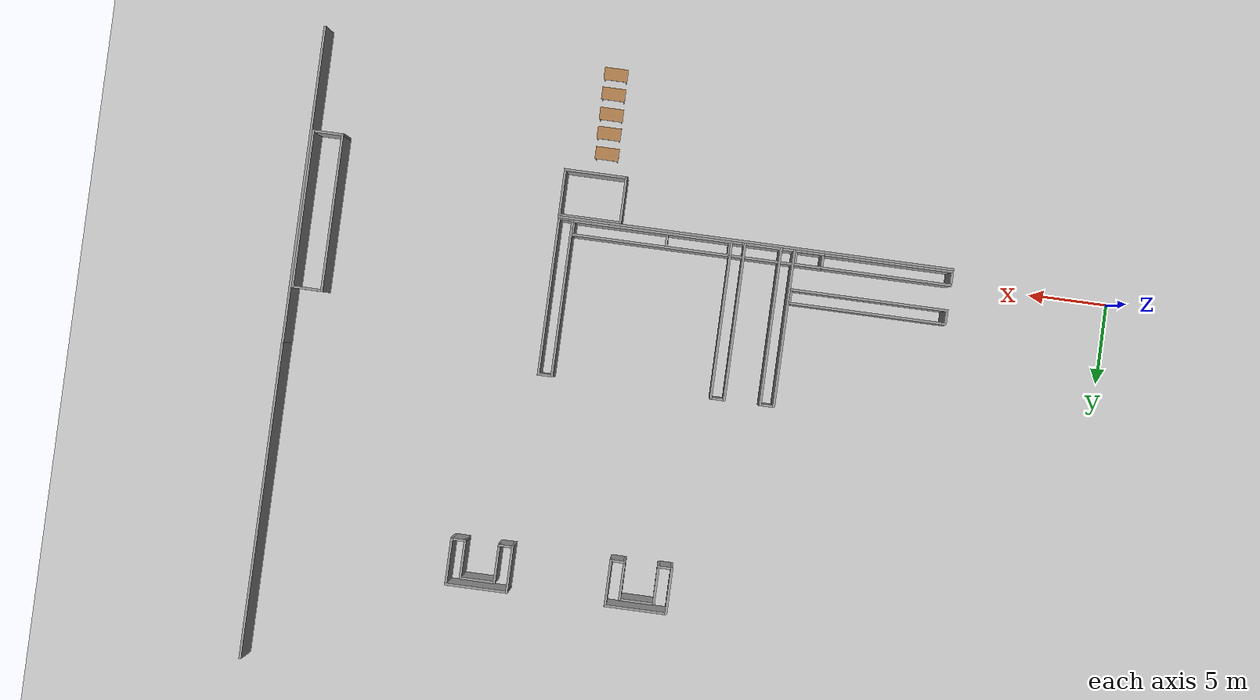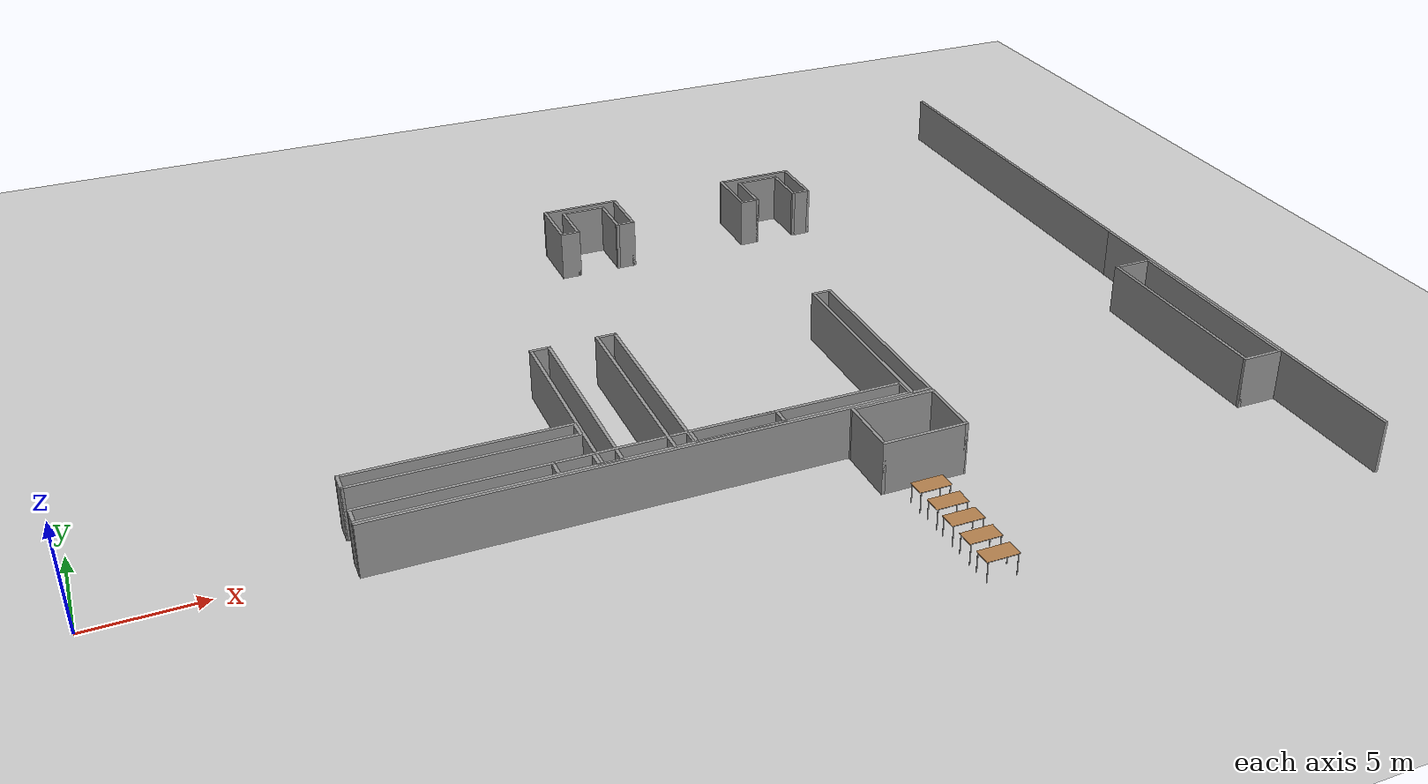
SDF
<sdf version="1.6">
 <world name="default">
  <model name="ground_plane">
   <static>1</static>
   <link name="link">
    <collision name="collision">
     <geometry><plane><normal>0 0 1</normal><size>105 105</size></plane></geometry>
     <surface>
      <contact><collide_bitmask>65535</collide_bitmask></contact>
      <friction><ode><mu>100</mu><mu2>50</mu2></ode></friction>
     </surface>
    </collision>
    <visual name="visual">
     <cast_shadows>0</cast_shadows>
     <geometry><plane><normal>0 0 1</normal><size>105 105</size></plane></geometry>
     <material>
      <script><uri>file://media/materials/scripts/gazebo.material</uri><name>Gazebo/Grey</name></script>
     </material>
    </visual>
   </link>
  </model>
  <model name="wall_v20m_4">
   <pose>51.4193 -0.729847 0 0 -0 0</pose>
   <link name="Wall_35">
    <collision name="Wall_35_Collision">
     <geometry><box><size>20 0.15 2.5</size></box></geometry>
     <pose>0 0 1.25 0 -0 0</pose>
    </collision>
    <visual name="Wall_35_Visual">
     <pose>0 0 1.25 0 -0 0</pose>
     <geometry><box><size>20 0.15 2.5</size></box></geometry>
     <material>
      <script><uri>file://media/materials/scripts/gazebo.material</uri><name>Gazebo/Grey</name></script>
      <ambient>1 1 1 1</ambient>
     </material>
     <meta><layer>0</layer></meta>
    </visual>
    <pose>0 -0 0 0 -0 -1.5708</pose>
   </link>
   <static>1</static>
  </model>
  <model name="wall_v20m_5">
   <pose>51.4329 19.2752 0 0 -0 0</pose>
   <link name="Wall_35">
    <collision name="Wall_35_Collision">
     <geometry><box><size>20 0.15 2.5</size></box></geometry>
     <pose>0 0 1.25 0 -0 0</pose>
    </collision>
    <visual name="Wall_35_Visual">
     <pose>0 0 1.25 0 -0 0</pose>
     <geometry><box><size>20 0.15 2.5</size></box></geometry>
     <material>
      <script><uri>file://media/materials/scripts/gazebo.material</uri><name>Gazebo/Grey</name></script>
      <ambient>1 1 1 1</ambient>
     </material>
     <meta><layer>0</layer></meta>
    </visual>
    <pose>0 -0 0 0 -0 -1.5708</pose>
   </link>
   <static>1</static>
  </model>
  <model name="base3x4_74">
   <pose>33.377 -2.40049 0 0 -0 0</pose>
   <link name="Wall_18">
    <collision name="Wall_18_Collision">
     <geometry><box><size>3 0.15 2.5</size></box></geometry>
     <pose>0 0 1.25 0 -0 0</pose>
    </collision>
    <visual name="Wall_18_Visual">
     <pose>0 0 1.25 0 -0 0</pose>
     <geometry><box><size>3 0.15 2.5</size></box></geometry>
     <material>
      <script><uri>file://media/materials/scripts/gazebo.material</uri><name>Gazebo/Grey</name></script>
      <ambient>1 1 1 1</ambient>
     </material>
     <meta><layer>0</layer></meta>
    </visual>
    <pose>-1.925 -0 0 0 -0 -1.5708</pose>
   </link>
   <link name="Wall_19">
    <collision name="Wall_19_Collision">
     <geometry><box><size>4 0.15 2.5</size></box></geometry>
     <pose>0 0 1.25 0 -0 0</pose>
    </collision>
    <visual name="Wall_19_Visual">
     <pose>0 0 1.25 0 -0 0</pose>
     <geometry><box><size>4 0.15 2.5</size></box></geometry>
     <material>
      <script><uri>file://media/materials/scripts/gazebo.material</uri><name>Gazebo/Grey</name></script>
      <ambient>1 1 1 1</ambient>
     </material>
     <meta><layer>0</layer></meta>
    </visual>
    <pose>-0 -1.425 0 0 -0 0</pose>
   </link>
   <link name="Wall_20">
    <collision name="Wall_20_Collision">
     <geometry><box><size>3 0.15 2.5</size></box></geometry>
     <pose>0 0 1.25 0 -0 0</pose>
    </collision>
    <visual name="Wall_20_Visual">
     <pose>0 0 1.25 0 -0 0</pose>
     <geometry><box><size>3 0.15 2.5</size></box></geometry>
     <material>
      <script><uri>file://media/materials/scripts/gazebo.material</uri><name>Gazebo/Grey</name></script>
      <ambient>1 1 1 1</ambient>
     </material>
     <meta><layer>0</layer></meta>
    </visual>
    <pose>1.925 -0 0 0 -0 1.5708</pose>
   </link>
   <link name="Wall_21">
    <collision name="Wall_21_Collision">
     <geometry><box><size>4 0.15 2.5</size></box></geometry>
     <pose>0 0 1.25 0 -0 0</pose>
    </collision>
    <visual name="Wall_21_Visual">
     <pose>0 0 1.25 0 -0 0</pose>
     <geometry><box><size>4 0.15 2.5</size></box></geometry>
     <material>
      <script><uri>file://media/materials/scripts/gazebo.material</uri><name>Gazebo/Grey</name></script>
      <ambient>1 1 1 1</ambient>
     </material>
     <meta><layer>0</layer></meta>
    </visual>
    <pose>-0 1.425 0 0 -0 3.14159</pose>
   </link>
   <static>1</static>
  </model>
  <model name="wall_25m">
   <pose>22.8554 -0.847994 0 0 -0 0</pose>
   <link name="Wall_28">
    <collision name="Wall_28_Collision">
     <geometry><box><size>25 0.15 2.5</size></box></geometry>
     <pose>0 0 1.25 0 -0 0</pose>
    </collision>
    <visual name="Wall_28_Visual">
     <pose>0 0 1.25 0 -0 0</pose>
     <geometry><box><size>25 0.15 2.5</size></box></geometry>
     <material>
      <script><uri>file://media/materials/scripts/gazebo.material</uri><name>Gazebo/Grey</name></script>
      <ambient>1 1 1 1</ambient>
     </material>
     <meta><layer>0</layer></meta>
    </visual>
   </link>
   <static>1</static>
  </model>
  <model name="base10x1_2">
   <pose>20.8183 4.22171 0 0 -0 0</pose>
   <link name="Wall_15">
    <collision name="Wall_15_Collision">
     <geometry><box><size>10 0.15 2.5</size></box></geometry>
     <pose>0 0 1.25 0 -0 0</pose>
    </collision>
    <visual name="Wall_15_Visual">
     <pose>0 0 1.25 0 -0 0</pose>
     <geometry><box><size>10 0.15 2.5</size></box></geometry>
     <material>
      <script><uri>file://media/materials/scripts/gazebo.material</uri><name>Gazebo/Grey</name></script>
      <ambient>1 1 1 1</ambient>
     </material>
     <meta><layer>0</layer></meta>
    </visual>
    <pose>-0.425 0 0 0 -0 1.5708</pose>
   </link>
   <link name="Wall_16">
    <collision name="Wall_16_Collision">
     <geometry><box><size>1 0.15 2.5</size></box></geometry>
     <pose>0 0 1.25 0 -0 0</pose>
    </collision>
    <visual name="Wall_16_Visual">
     <pose>0 0 1.25 0 -0 0</pose>
     <geometry><box><size>1 0.15 2.5</size></box></geometry>
     <material>
      <script><uri>file://media/materials/scripts/gazebo.material</uri><name>Gazebo/Grey</name></script>
      <ambient>1 1 1 1</ambient>
     </material>
     <meta><layer>0</layer></meta>
    </visual>
    <pose>0 4.925 0 0 -0 0</pose>
   </link>
   <link name="Wall_17">
    <collision name="Wall_17_Collision">
     <geometry><box><size>10 0.15 2.5</size></box></geometry>
     <pose>0 0 1.25 0 -0 0</pose>
    </collision>
    <visual name="Wall_17_Visual">
     <pose>0 0 1.25 0 -0 0</pose>
     <geometry><box><size>10 0.15 2.5</size></box></geometry>
     <material>
      <script><uri>file://media/materials/scripts/gazebo.material</uri><name>Gazebo/Grey</name></script>
      <ambient>1 1 1 1</ambient>
     </material>
     <meta><layer>0</layer></meta>
    </visual>
    <pose>0.425 0 0 0 -0 -1.5708</pose>
   </link>
   <link name="Wall_18">
    <collision name="Wall_18_Collision">
     <geometry><box><size>1 0.15 2.5</size></box></geometry>
     <pose>0 0 1.25 0 -0 0</pose>
    </collision>
    <visual name="Wall_18_Visual">
     <pose>0 0 1.25 0 -0 0</pose>
     <geometry><box><size>1 0.15 2.5</size></box></geometry>
     <material>
      <script><uri>file://media/materials/scripts/gazebo.material</uri><name>Gazebo/Grey</name></script>
      <ambient>1 1 1 1</ambient>
     </material>
     <meta><layer>0</layer></meta>
    </visual>
    <pose>0 -4.925 0 0 -0 3.14159</pose>
   </link>
   <static>1</static>
  </model>
  <model name="base1x10">
   <pose>15.3419 -0.283387 0 0 -0 0</pose>
   <link name="Wall_0">
    <collision name="Wall_0_Collision">
     <geometry><box><size>1 0.15 2.5</size></box></geometry>
     <pose>0 0 1.25 0 -0 0</pose>
    </collision>
    <visual name="Wall_0_Visual">
     <pose>0 0 1.25 0 -0 0</pose>
     <geometry><box><size>1 0.15 2.5</size></box></geometry>
     <material>
      <script><uri>file://media/materials/scripts/gazebo.material</uri><name>Gazebo/Grey</name></script>
      <ambient>1 1 1 1</ambient>
     </material>
     <meta><layer>0</layer></meta>
    </visual>
    <pose>-4.925 -0 0 0 -0 -1.5708</pose>
   </link>
   <link name="Wall_1">
    <collision name="Wall_1_Collision">
     <geometry><box><size>10 0.15 2.5</size></box></geometry>
     <pose>0 0 1.25 0 -0 0</pose>
    </collision>
    <visual name="Wall_1_Visual">
     <pose>0 0 1.25 0 -0 0</pose>
     <geometry><box><size>10 0.15 2.5</size></box></geometry>
     <material>
      <script><uri>file://media/materials/scripts/gazebo.material</uri><name>Gazebo/Grey</name></script>
      <ambient>1 1 1 1</ambient>
     </material>
     <meta><layer>0</layer></meta>
    </visual>
    <pose>0 -0.425 0 0 -0 0</pose>
   </link>
   <link name="Wall_2">
    <collision name="Wall_2_Collision">
     <geometry><box><size>1 0.15 2.5</size></box></geometry>
     <pose>0 0 1.25 0 -0 0</pose>
    </collision>
    <visual name="Wall_2_Visual">
     <pose>0 0 1.25 0 -0 0</pose>
     <geometry><box><size>1 0.15 2.5</size></box></geometry>
     <material>
      <script><uri>file://media/materials/scripts/gazebo.material</uri><name>Gazebo/Grey</name></script>
      <ambient>1 1 1 1</ambient>
     </material>
     <meta><layer>0</layer></meta>
    </visual>
    <pose>4.925 -0 0 0 -0 1.5708</pose>
   </link>
   <link name="Wall_3">
    <collision name="Wall_3_Collision">
     <geometry><box><size>10 0.15 2.5</size></box></geometry>
     <pose>0 0 1.25 0 -0 0</pose>
    </collision>
    <visual name="Wall_3_Visual">
     <pose>0 0 1.25 0 -0 0</pose>
     <geometry><box><size>10 0.15 2.5</size></box></geometry>
     <material>
      <script><uri>file://media/materials/scripts/gazebo.material</uri><name>Gazebo/Grey</name></script>
      <ambient>1 1 1 1</ambient>
     </material>
     <meta><layer>0</layer></meta>
    </visual>
    <pose>0 0.425 0 0 -0 3.14159</pose>
   </link>
   <static>1</static>
  </model>
  <model name="base1x10_0">
   <pose>15.357 2.17425 0 0 -0 0</pose>
   <link name="Wall_0">
    <collision name="Wall_0_Collision">
     <geometry><box><size>1 0.15 2.5</size></box></geometry>
     <pose>0 0 1.25 0 -0 0</pose>
    </collision>
    <visual name="Wall_0_Visual">
     <pose>0 0 1.25 0 -0 0</pose>
     <geometry><box><size>1 0.15 2.5</size></box></geometry>
     <material>
      <script><uri>file://media/materials/scripts/gazebo.material</uri><name>Gazebo/Grey</name></script>
      <ambient>1 1 1 1</ambient>
     </material>
     <meta><layer>0</layer></meta>
    </visual>
    <pose>-4.925 -0 0 0 -0 -1.5708</pose>
   </link>
   <link name="Wall_1">
    <collision name="Wall_1_Collision">
     <geometry><box><size>10 0.15 2.5</size></box></geometry>
     <pose>0 0 1.25 0 -0 0</pose>
    </collision>
    <visual name="Wall_1_Visual">
     <pose>0 0 1.25 0 -0 0</pose>
     <geometry><box><size>10 0.15 2.5</size></box></geometry>
     <material>
      <script><uri>file://media/materials/scripts/gazebo.material</uri><name>Gazebo/Grey</name></script>
      <ambient>1 1 1 1</ambient>
     </material>
     <meta><layer>0</layer></meta>
    </visual>
    <pose>0 -0.425 0 0 -0 0</pose>
   </link>
   <link name="Wall_2">
    <collision name="Wall_2_Collision">
     <geometry><box><size>1 0.15 2.5</size></box></geometry>
     <pose>0 0 1.25 0 -0 0</pose>
    </collision>
    <visual name="Wall_2_Visual">
     <pose>0 0 1.25 0 -0 0</pose>
     <geometry><box><size>1 0.15 2.5</size></box></geometry>
     <material>
      <script><uri>file://media/materials/scripts/gazebo.material</uri><name>Gazebo/Grey</name></script>
      <ambient>1 1 1 1</ambient>
     </material>
     <meta><layer>0</layer></meta>
    </visual>
    <pose>4.925 -0 0 0 -0 1.5708</pose>
   </link>
   <link name="Wall_3">
    <collision name="Wall_3_Collision">
     <geometry><box><size>10 0.15 2.5</size></box></geometry>
     <pose>0 0 1.25 0 -0 0</pose>
    </collision>
    <visual name="Wall_3_Visual">
     <pose>0 0 1.25 0 -0 0</pose>
     <geometry><box><size>10 0.15 2.5</size></box></geometry>
     <material>
      <script><uri>file://media/materials/scripts/gazebo.material</uri><name>Gazebo/Grey</name></script>
      <ambient>1 1 1 1</ambient>
     </material>
     <meta><layer>0</layer></meta>
    </visual>
    <pose>0 0.425 0 0 -0 3.14159</pose>
   </link>
   <static>1</static>
  </model>
  <model name="base10x1_4">
   <pose>34.8544 4.17407 0 0 -0 0</pose>
   <link name="Wall_15">
    <collision name="Wall_15_Collision">
     <geometry><box><size>10 0.15 2.5</size></box></geometry>
     <pose>0 0 1.25 0 -0 0</pose>
    </collision>
    <visual name="Wall_15_Visual">
     <pose>0 0 1.25 0 -0 0</pose>
     <geometry><box><size>10 0.15 2.5</size></box></geometry>
     <material>
      <script><uri>file://media/materials/scripts/gazebo.material</uri><name>Gazebo/Grey</name></script>
      <ambient>1 1 1 1</ambient>
     </material>
     <meta><layer>0</layer></meta>
    </visual>
    <pose>-0.425 0 0 0 -0 1.5708</pose>
   </link>
   <link name="Wall_16">
    <collision name="Wall_16_Collision">
     <geometry><box><size>1 0.15 2.5</size></box></geometry>
     <pose>0 0 1.25 0 -0 0</pose>
    </collision>
    <visual name="Wall_16_Visual">
     <pose>0 0 1.25 0 -0 0</pose>
     <geometry><box><size>1 0.15 2.5</size></box></geometry>
     <material>
      <script><uri>file://media/materials/scripts/gazebo.material</uri><name>Gazebo/Grey</name></script>
      <ambient>1 1 1 1</ambient>
     </material>
     <meta><layer>0</layer></meta>
    </visual>
    <pose>0 4.925 0 0 -0 0</pose>
   </link>
   <link name="Wall_17">
    <collision name="Wall_17_Collision">
     <geometry><box><size>10 0.15 2.5</size></box></geometry>
     <pose>0 0 1.25 0 -0 0</pose>
    </collision>
    <visual name="Wall_17_Visual">
     <pose>0 0 1.25 0 -0 0</pose>
     <geometry><box><size>10 0.15 2.5</size></box></geometry>
     <material>
      <script><uri>file://media/materials/scripts/gazebo.material</uri><name>Gazebo/Grey</name></script>
      <ambient>1 1 1 1</ambient>
     </material>
     <meta><layer>0</layer></meta>
    </visual>
    <pose>0.425 0 0 0 -0 -1.5708</pose>
   </link>
   <link name="Wall_18">
    <collision name="Wall_18_Collision">
     <geometry><box><size>1 0.15 2.5</size></box></geometry>
     <pose>0 0 1.25 0 -0 0</pose>
    </collision>
    <visual name="Wall_18_Visual">
     <pose>0 0 1.25 0 -0 0</pose>
     <geometry><box><size>1 0.15 2.5</size></box></geometry>
     <material>
      <script><uri>file://media/materials/scripts/gazebo.material</uri><name>Gazebo/Grey</name></script>
      <ambient>1 1 1 1</ambient>
     </material>
     <meta><layer>0</layer></meta>
    </visual>
    <pose>0 -4.925 0 0 -0 3.14159</pose>
   </link>
   <static>1</static>
  </model>
  <model name="base1x10_1">
   <pose>29.3973 -0.272641 0 0 -0 0</pose>
   <link name="Wall_0">
    <collision name="Wall_0_Collision">
     <geometry><box><size>1 0.15 2.5</size></box></geometry>
     <pose>0 0 1.25 0 -0 0</pose>
    </collision>
    <visual name="Wall_0_Visual">
     <pose>0 0 1.25 0 -0 0</pose>
     <geometry><box><size>1 0.15 2.5</size></box></geometry>
     <material>
      <script><uri>file://media/materials/scripts/gazebo.material</uri><name>Gazebo/Grey</name></script>
      <ambient>1 1 1 1</ambient>
     </material>
     <meta><layer>0</layer></meta>
    </visual>
    <pose>-4.925 -0 0 0 -0 -1.5708</pose>
   </link>
   <link name="Wall_1">
    <collision name="Wall_1_Collision">
     <geometry><box><size>10 0.15 2.5</size></box></geometry>
     <pose>0 0 1.25 0 -0 0</pose>
    </collision>
    <visual name="Wall_1_Visual">
     <pose>0 0 1.25 0 -0 0</pose>
     <geometry><box><size>10 0.15 2.5</size></box></geometry>
     <material>
      <script><uri>file://media/materials/scripts/gazebo.material</uri><name>Gazebo/Grey</name></script>
      <ambient>1 1 1 1</ambient>
     </material>
     <meta><layer>0</layer></meta>
    </visual>
    <pose>0 -0.425 0 0 -0 0</pose>
   </link>
   <link name="Wall_2">
    <collision name="Wall_2_Collision">
     <geometry><box><size>1 0.15 2.5</size></box></geometry>
     <pose>0 0 1.25 0 -0 0</pose>
    </collision>
    <visual name="Wall_2_Visual">
     <pose>0 0 1.25 0 -0 0</pose>
     <geometry><box><size>1 0.15 2.5</size></box></geometry>
     <material>
      <script><uri>file://media/materials/scripts/gazebo.material</uri><name>Gazebo/Grey</name></script>
      <ambient>1 1 1 1</ambient>
     </material>
     <meta><layer>0</layer></meta>
    </visual>
    <pose>4.925 -0 0 0 -0 1.5708</pose>
   </link>
   <link name="Wall_3">
    <collision name="Wall_3_Collision">
     <geometry><box><size>10 0.15 2.5</size></box></geometry>
     <pose>0 0 1.25 0 -0 0</pose>
    </collision>
    <visual name="Wall_3_Visual">
     <pose>0 0 1.25 0 -0 0</pose>
     <geometry><box><size>10 0.15 2.5</size></box></geometry>
     <material>
      <script><uri>file://media/materials/scripts/gazebo.material</uri><name>Gazebo/Grey</name></script>
      <ambient>1 1 1 1</ambient>
     </material>
     <meta><layer>0</layer></meta>
    </visual>
    <pose>0 0.425 0 0 -0 3.14159</pose>
   </link>
   <static>1</static>
  </model>
  <model name="base10x1_0">
   <pose>23.9471 4.22521 0 0 -0 0</pose>
   <link name="Wall_15">
    <collision name="Wall_15_Collision">
     <geometry><box><size>10 0.15 2.5</size></box></geometry>
     <pose>0 0 1.25 0 -0 0</pose>
    </collision>
    <visual name="Wall_15_Visual">
     <pose>0 0 1.25 0 -0 0</pose>
     <geometry><box><size>10 0.15 2.5</size></box></geometry>
     <material>
      <script><uri>file://media/materials/scripts/gazebo.material</uri><name>Gazebo/Grey</name></script>
      <ambient>1 1 1 1</ambient>
     </material>
     <meta><layer>0</layer></meta>
    </visual>
    <pose>-0.425 0 0 0 -0 1.5708</pose>
   </link>
   <link name="Wall_16">
    <collision name="Wall_16_Collision">
     <geometry><box><size>1 0.15 2.5</size></box></geometry>
     <pose>0 0 1.25 0 -0 0</pose>
    </collision>
    <visual name="Wall_16_Visual">
     <pose>0 0 1.25 0 -0 0</pose>
     <geometry><box><size>1 0.15 2.5</size></box></geometry>
     <material>
      <script><uri>file://media/materials/scripts/gazebo.material</uri><name>Gazebo/Grey</name></script>
      <ambient>1 1 1 1</ambient>
     </material>
     <meta><layer>0</layer></meta>
    </visual>
    <pose>0 4.925 0 0 -0 0</pose>
   </link>
   <link name="Wall_17">
    <collision name="Wall_17_Collision">
     <geometry><box><size>10 0.15 2.5</size></box></geometry>
     <pose>0 0 1.25 0 -0 0</pose>
    </collision>
    <visual name="Wall_17_Visual">
     <pose>0 0 1.25 0 -0 0</pose>
     <geometry><box><size>10 0.15 2.5</size></box></geometry>
     <material>
      <script><uri>file://media/materials/scripts/gazebo.material</uri><name>Gazebo/Grey</name></script>
      <ambient>1 1 1 1</ambient>
     </material>
     <meta><layer>0</layer></meta>
    </visual>
    <pose>0.425 0 0 0 -0 -1.5708</pose>
   </link>
   <link name="Wall_18">
    <collision name="Wall_18_Collision">
     <geometry><box><size>1 0.15 2.5</size></box></geometry>
     <pose>0 0 1.25 0 -0 0</pose>
    </collision>
    <visual name="Wall_18_Visual">
     <pose>0 0 1.25 0 -0 0</pose>
     <geometry><box><size>1 0.15 2.5</size></box></geometry>
     <material>
      <script><uri>file://media/materials/scripts/gazebo.material</uri><name>Gazebo/Grey</name></script>
      <ambient>1 1 1 1</ambient>
     </material>
     <meta><layer>0</layer></meta>
    </visual>
    <pose>0 -4.925 0 0 -0 3.14159</pose>
   </link>
   <static>1</static>
  </model>
  <model name="base1x10_2">
   <pose>23.5009 -0.27327 0 0 -0 0</pose>
   <link name="Wall_0">
    <collision name="Wall_0_Collision">
     <geometry><box><size>1 0.15 2.5</size></box></geometry>
     <pose>0 0 1.25 0 -0 0</pose>
    </collision>
    <visual name="Wall_0_Visual">
     <pose>0 0 1.25 0 -0 0</pose>
     <geometry><box><size>1 0.15 2.5</size></box></geometry>
     <material>
      <script><uri>file://media/materials/scripts/gazebo.material</uri><name>Gazebo/Grey</name></script>
      <ambient>1 1 1 1</ambient>
     </material>
     <meta><layer>0</layer></meta>
    </visual>
    <pose>-4.925 -0 0 0 -0 -1.5708</pose>
   </link>
   <link name="Wall_1">
    <collision name="Wall_1_Collision">
     <geometry><box><size>10 0.15 2.5</size></box></geometry>
     <pose>0 0 1.25 0 -0 0</pose>
    </collision>
    <visual name="Wall_1_Visual">
     <pose>0 0 1.25 0 -0 0</pose>
     <geometry><box><size>10 0.15 2.5</size></box></geometry>
     <material>
      <script><uri>file://media/materials/scripts/gazebo.material</uri><name>Gazebo/Grey</name></script>
      <ambient>1 1 1 1</ambient>
     </material>
     <meta><layer>0</layer></meta>
    </visual>
    <pose>0 -0.425 0 0 -0 0</pose>
   </link>
   <link name="Wall_2">
    <collision name="Wall_2_Collision">
     <geometry><box><size>1 0.15 2.5</size></box></geometry>
     <pose>0 0 1.25 0 -0 0</pose>
    </collision>
    <visual name="Wall_2_Visual">
     <pose>0 0 1.25 0 -0 0</pose>
     <geometry><box><size>1 0.15 2.5</size></box></geometry>
     <material>
      <script><uri>file://media/materials/scripts/gazebo.material</uri><name>Gazebo/Grey</name></script>
      <ambient>1 1 1 1</ambient>
     </material>
     <meta><layer>0</layer></meta>
    </visual>
    <pose>4.925 -0 0 0 -0 1.5708</pose>
   </link>
   <link name="Wall_3">
    <collision name="Wall_3_Collision">
     <geometry><box><size>10 0.15 2.5</size></box></geometry>
     <pose>0 0 1.25 0 -0 0</pose>
    </collision>
    <visual name="Wall_3_Visual">
     <pose>0 0 1.25 0 -0 0</pose>
     <geometry><box><size>10 0.15 2.5</size></box></geometry>
     <material>
      <script><uri>file://media/materials/scripts/gazebo.material</uri><name>Gazebo/Grey</name></script>
      <ambient>1 1 1 1</ambient>
     </material>
     <meta><layer>0</layer></meta>
    </visual>
    <pose>0 0.425 0 0 -0 3.14159</pose>
   </link>
   <static>1</static>
  </model>
  <model name="table_7">
   <static>1</static>
   <link name="link">
    <collision name="surface">
     <pose>0 0 1 0 -0 0</pose>
     <geometry><box><size>1.5 0.8 0.03</size></box></geometry>
     <surface><friction><ode><mu>0.6</mu><mu2>0.6</mu2></ode></friction></surface>
    </collision>
    <visual name="visual1">
     <pose>0 0 1 0 -0 0</pose>
     <geometry><box><size>1.5 0.8 0.03</size></box></geometry>
     <material>
      <script><uri>file://media/materials/scripts/gazebo.material</uri><name>Gazebo/Wood</name></script>
     </material>
    </visual>
    <collision name="front_left_leg">
     <pose>0.68 0.38 0.5 0 -0 0</pose>
     <geometry><cylinder><radius>0.02</radius><length>1</length></cylinder></geometry>
    </collision>
    <visual name="front_left_leg">
     <pose>0.68 0.38 0.5 0 -0 0</pose>
     <geometry><cylinder><radius>0.02</radius><length>1</length></cylinder></geometry>
     <material>
      <script><uri>file://media/materials/scripts/gazebo.material</uri><name>Gazebo/Grey</name></script>
     </material>
    </visual>
    <collision name="front_right_leg">
     <pose>0.68 -0.38 0.5 0 -0 0</pose>
     <geometry><cylinder><radius>0.02</radius><length>1</length></cylinder></geometry>
    </collision>
    <visual name="front_right_leg">
     <pose>0.68 -0.38 0.5 0 -0 0</pose>
     <geometry><cylinder><radius>0.02</radius><length>1</length></cylinder></geometry>
     <material>
      <script><uri>file://media/materials/scripts/gazebo.material</uri><name>Gazebo/Grey</name></script>
     </material>
    </visual>
    <collision name="back_right_leg">
     <pose>-0.68 -0.38 0.5 0 -0 0</pose>
     <geometry><cylinder><radius>0.02</radius><length>1</length></cylinder></geometry>
    </collision>
    <visual name="back_right_leg">
     <pose>-0.68 -0.38 0.5 0 -0 0</pose>
     <geometry><cylinder><radius>0.02</radius><length>1</length></cylinder></geometry>
     <material>
      <script><uri>file://media/materials/scripts/gazebo.material</uri><name>Gazebo/Grey</name></script>
     </material>
    </visual>
    <collision name="back_left_leg">
     <pose>-0.68 0.38 0.5 0 -0 0</pose>
     <geometry><cylinder><radius>0.02</radius><length>1</length></cylinder></geometry>
    </collision>
    <visual name="back_left_leg">
     <pose>-0.68 0.38 0.5 0 -0 0</pose>
     <geometry><cylinder><radius>0.02</radius><length>1</length></cylinder></geometry>
     <material>
      <script><uri>file://media/materials/scripts/gazebo.material</uri><name>Gazebo/Grey</name></script>
     </material>
    </visual>
   </link>
   <pose>33.0266 -10.3543 0 0 -0 0</pose>
  </model>
  <model name="table_8">
   <static>1</static>
   <link name="link">
    <collision name="surface">
     <pose>0 0 1 0 -0 0</pose>
     <geometry><box><size>1.5 0.8 0.03</size></box></geometry>
     <surface><friction><ode><mu>0.6</mu><mu2>0.6</mu2></ode></friction></surface>
    </collision>
    <visual name="visual1">
     <pose>0 0 1 0 -0 0</pose>
     <geometry><box><size>1.5 0.8 0.03</size></box></geometry>
     <material>
      <script><uri>file://media/materials/scripts/gazebo.material</uri><name>Gazebo/Wood</name></script>
     </material>
    </visual>
    <collision name="front_left_leg">
     <pose>0.68 0.38 0.5 0 -0 0</pose>
     <geometry><cylinder><radius>0.02</radius><length>1</length></cylinder></geometry>
    </collision>
    <visual name="front_left_leg">
     <pose>0.68 0.38 0.5 0 -0 0</pose>
     <geometry><cylinder><radius>0.02</radius><length>1</length></cylinder></geometry>
     <material>
      <script><uri>file://media/materials/scripts/gazebo.material</uri><name>Gazebo/Grey</name></script>
     </material>
    </visual>
    <collision name="front_right_leg">
     <pose>0.68 -0.38 0.5 0 -0 0</pose>
     <geometry><cylinder><radius>0.02</radius><length>1</length></cylinder></geometry>
    </collision>
    <visual name="front_right_leg">
     <pose>0.68 -0.38 0.5 0 -0 0</pose>
     <geometry><cylinder><radius>0.02</radius><length>1</length></cylinder></geometry>
     <material>
      <script><uri>file://media/materials/scripts/gazebo.material</uri><name>Gazebo/Grey</name></script>
     </material>
    </visual>
    <collision name="back_right_leg">
     <pose>-0.68 -0.38 0.5 0 -0 0</pose>
     <geometry><cylinder><radius>0.02</radius><length>1</length></cylinder></geometry>
    </collision>
    <visual name="back_right_leg">
     <pose>-0.68 -0.38 0.5 0 -0 0</pose>
     <geometry><cylinder><radius>0.02</radius><length>1</length></cylinder></geometry>
     <material>
      <script><uri>file://media/materials/scripts/gazebo.material</uri><name>Gazebo/Grey</name></script>
     </material>
    </visual>
    <collision name="back_left_leg">
     <pose>-0.68 0.38 0.5 0 -0 0</pose>
     <geometry><cylinder><radius>0.02</radius><length>1</length></cylinder></geometry>
    </collision>
    <visual name="back_left_leg">
     <pose>-0.68 0.38 0.5 0 -0 0</pose>
     <geometry><cylinder><radius>0.02</radius><length>1</length></cylinder></geometry>
     <material>
      <script><uri>file://media/materials/scripts/gazebo.material</uri><name>Gazebo/Grey</name></script>
     </material>
    </visual>
   </link>
   <pose>33.0125 -9.09753 0 0 -0 0</pose>
  </model>
  <model name="table_9">
   <static>1</static>
   <link name="link">
    <collision name="surface">
     <pose>0 0 1 0 -0 0</pose>
     <geometry><box><size>1.5 0.8 0.03</size></box></geometry>
     <surface><friction><ode><mu>0.6</mu><mu2>0.6</mu2></ode></friction></surface>
    </collision>
    <visual name="visual1">
     <pose>0 0 1 0 -0 0</pose>
     <geometry><box><size>1.5 0.8 0.03</size></box></geometry>
     <material>
      <script><uri>file://media/materials/scripts/gazebo.material</uri><name>Gazebo/Wood</name></script>
     </material>
    </visual>
    <collision name="front_left_leg">
     <pose>0.68 0.38 0.5 0 -0 0</pose>
     <geometry><cylinder><radius>0.02</radius><length>1</length></cylinder></geometry>
    </collision>
    <visual name="front_left_leg">
     <pose>0.68 0.38 0.5 0 -0 0</pose>
     <geometry><cylinder><radius>0.02</radius><length>1</length></cylinder></geometry>
     <material>
      <script><uri>file://media/materials/scripts/gazebo.material</uri><name>Gazebo/Grey</name></script>
     </material>
    </visual>
    <collision name="front_right_leg">
     <pose>0.68 -0.38 0.5 0 -0 0</pose>
     <geometry><cylinder><radius>0.02</radius><length>1</length></cylinder></geometry>
    </collision>
    <visual name="front_right_leg">
     <pose>0.68 -0.38 0.5 0 -0 0</pose>
     <geometry><cylinder><radius>0.02</radius><length>1</length></cylinder></geometry>
     <material>
      <script><uri>file://media/materials/scripts/gazebo.material</uri><name>Gazebo/Grey</name></script>
     </material>
    </visual>
    <collision name="back_right_leg">
     <pose>-0.68 -0.38 0.5 0 -0 0</pose>
     <geometry><cylinder><radius>0.02</radius><length>1</length></cylinder></geometry>
    </collision>
    <visual name="back_right_leg">
     <pose>-0.68 -0.38 0.5 0 -0 0</pose>
     <geometry><cylinder><radius>0.02</radius><length>1</length></cylinder></geometry>
     <material>
      <script><uri>file://media/materials/scripts/gazebo.material</uri><name>Gazebo/Grey</name></script>
     </material>
    </visual>
    <collision name="back_left_leg">
     <pose>-0.68 0.38 0.5 0 -0 0</pose>
     <geometry><cylinder><radius>0.02</radius><length>1</length></cylinder></geometry>
    </collision>
    <visual name="back_left_leg">
     <pose>-0.68 0.38 0.5 0 -0 0</pose>
     <geometry><cylinder><radius>0.02</radius><length>1</length></cylinder></geometry>
     <material>
      <script><uri>file://media/materials/scripts/gazebo.material</uri><name>Gazebo/Grey</name></script>
     </material>
    </visual>
   </link>
   <pose>32.9806 -7.80617 0 0 -0 0</pose>
  </model>
  <model name="table_10">
   <static>1</static>
   <link name="link">
    <collision name="surface">
     <pose>0 0 1 0 -0 0</pose>
     <geometry><box><size>1.5 0.8 0.03</size></box></geometry>
     <surface><friction><ode><mu>0.6</mu><mu2>0.6</mu2></ode></friction></surface>
    </collision>
    <visual name="visual1">
     <pose>0 0 1 0 -0 0</pose>
     <geometry><box><size>1.5 0.8 0.03</size></box></geometry>
     <material>
      <script><uri>file://media/materials/scripts/gazebo.material</uri><name>Gazebo/Wood</name></script>
     </material>
    </visual>
    <collision name="front_left_leg">
     <pose>0.68 0.38 0.5 0 -0 0</pose>
     <geometry><cylinder><radius>0.02</radius><length>1</length></cylinder></geometry>
    </collision>
    <visual name="front_left_leg">
     <pose>0.68 0.38 0.5 0 -0 0</pose>
     <geometry><cylinder><radius>0.02</radius><length>1</length></cylinder></geometry>
     <material>
      <script><uri>file://media/materials/scripts/gazebo.material</uri><name>Gazebo/Grey</name></script>
     </material>
    </visual>
    <collision name="front_right_leg">
     <pose>0.68 -0.38 0.5 0 -0 0</pose>
     <geometry><cylinder><radius>0.02</radius><length>1</length></cylinder></geometry>
    </collision>
    <visual name="front_right_leg">
     <pose>0.68 -0.38 0.5 0 -0 0</pose>
     <geometry><cylinder><radius>0.02</radius><length>1</length></cylinder></geometry>
     <material>
      <script><uri>file://media/materials/scripts/gazebo.material</uri><name>Gazebo/Grey</name></script>
     </material>
    </visual>
    <collision name="back_right_leg">
     <pose>-0.68 -0.38 0.5 0 -0 0</pose>
     <geometry><cylinder><radius>0.02</radius><length>1</length></cylinder></geometry>
    </collision>
    <visual name="back_right_leg">
     <pose>-0.68 -0.38 0.5 0 -0 0</pose>
     <geometry><cylinder><radius>0.02</radius><length>1</length></cylinder></geometry>
     <material>
      <script><uri>file://media/materials/scripts/gazebo.material</uri><name>Gazebo/Grey</name></script>
     </material>
    </visual>
    <collision name="back_left_leg">
     <pose>-0.68 0.38 0.5 0 -0 0</pose>
     <geometry><cylinder><radius>0.02</radius><length>1</length></cylinder></geometry>
    </collision>
    <visual name="back_left_leg">
     <pose>-0.68 0.38 0.5 0 -0 0</pose>
     <geometry><cylinder><radius>0.02</radius><length>1</length></cylinder></geometry>
     <material>
      <script><uri>file://media/materials/scripts/gazebo.material</uri><name>Gazebo/Grey</name></script>
     </material>
    </visual>
   </link>
   <pose>32.9655 -6.58438 0 0 -0 0</pose>
  </model>
  <model name="table_11">
   <static>1</static>
   <link name="link">
    <collision name="surface">
     <pose>0 0 1 0 -0 0</pose>
     <geometry><box><size>1.5 0.8 0.03</size></box></geometry>
     <surface><friction><ode><mu>0.6</mu><mu2>0.6</mu2></ode></friction></surface>
    </collision>
    <visual name="visual1">
     <pose>0 0 1 0 -0 0</pose>
     <geometry><box><size>1.5 0.8 0.03</size></box></geometry>
     <material>
      <script><uri>file://media/materials/scripts/gazebo.material</uri><name>Gazebo/Wood</name></script>
     </material>
    </visual>
    <collision name="front_left_leg">
     <pose>0.68 0.38 0.5 0 -0 0</pose>
     <geometry><cylinder><radius>0.02</radius><length>1</length></cylinder></geometry>
    </collision>
    <visual name="front_left_leg">
     <pose>0.68 0.38 0.5 0 -0 0</pose>
     <geometry><cylinder><radius>0.02</radius><length>1</length></cylinder></geometry>
     <material>
      <script><uri>file://media/materials/scripts/gazebo.material</uri><name>Gazebo/Grey</name></script>
     </material>
    </visual>
    <collision name="front_right_leg">
     <pose>0.68 -0.38 0.5 0 -0 0</pose>
     <geometry><cylinder><radius>0.02</radius><length>1</length></cylinder></geometry>
    </collision>
    <visual name="front_right_leg">
     <pose>0.68 -0.38 0.5 0 -0 0</pose>
     <geometry><cylinder><radius>0.02</radius><length>1</length></cylinder></geometry>
     <material>
      <script><uri>file://media/materials/scripts/gazebo.material</uri><name>Gazebo/Grey</name></script>
     </material>
    </visual>
    <collision name="back_right_leg">
     <pose>-0.68 -0.38 0.5 0 -0 0</pose>
     <geometry><cylinder><radius>0.02</radius><length>1</length></cylinder></geometry>
    </collision>
    <visual name="back_right_leg">
     <pose>-0.68 -0.38 0.5 0 -0 0</pose>
     <geometry><cylinder><radius>0.02</radius><length>1</length></cylinder></geometry>
     <material>
      <script><uri>file://media/materials/scripts/gazebo.material</uri><name>Gazebo/Grey</name></script>
     </material>
    </visual>
    <collision name="back_left_leg">
     <pose>-0.68 0.38 0.5 0 -0 0</pose>
     <geometry><cylinder><radius>0.02</radius><length>1</length></cylinder></geometry>
    </collision>
    <visual name="back_left_leg">
     <pose>-0.68 0.38 0.5 0 -0 0</pose>
     <geometry><cylinder><radius>0.02</radius><length>1</length></cylinder></geometry>
     <material>
      <script><uri>file://media/materials/scripts/gazebo.material</uri><name>Gazebo/Grey</name></script>
     </material>
    </visual>
   </link>
   <pose>32.9166 -5.29279 0 0 -0 0</pose>
  </model>
  <model name="base10x2">
   <pose>50.3526 0.79739 0 0 -0 0</pose>
   <link name="Wall_20">
    <collision name="Wall_20_Collision">
     <geometry><box><size>2 0.15 2.5</size></box></geometry>
     <pose>0 0 1.25 0 -0 0</pose>
    </collision>
    <visual name="Wall_20_Visual">
     <pose>0 0 1.25 0 -0 0</pose>
     <geometry><box><size>2 0.15 2.5</size></box></geometry>
     <material>
      <script><uri>file://media/materials/scripts/gazebo.material</uri><name>Gazebo/Grey</name></script>
      <ambient>1 1 1 1</ambient>
     </material>
     <meta><layer>0</layer></meta>
    </visual>
    <pose>0 4.925 0 0 -0 0</pose>
   </link>
   <link name="Wall_21">
    <collision name="Wall_21_Collision">
     <geometry><box><size>10 0.15 2.5</size></box></geometry>
     <pose>0 0 1.25 0 -0 0</pose>
    </collision>
    <visual name="Wall_21_Visual">
     <pose>0 0 1.25 0 -0 0</pose>
     <geometry><box><size>10 0.15 2.5</size></box></geometry>
     <material>
      <script><uri>file://media/materials/scripts/gazebo.material</uri><name>Gazebo/Grey</name></script>
      <ambient>1 1 1 1</ambient>
     </material>
     <meta><layer>0</layer></meta>
    </visual>
    <pose>0.925 -0 0 0 -0 -1.5708</pose>
   </link>
   <link name="Wall_22">
    <collision name="Wall_22_Collision">
     <geometry><box><size>2 0.15 2.5</size></box></geometry>
     <pose>0 0 1.25 0 -0 0</pose>
    </collision>
    <visual name="Wall_22_Visual">
     <pose>0 0 1.25 0 -0 0</pose>
     <geometry><box><size>2 0.15 2.5</size></box></geometry>
     <material>
      <script><uri>file://media/materials/scripts/gazebo.material</uri><name>Gazebo/Grey</name></script>
      <ambient>1 1 1 1</ambient>
     </material>
     <meta><layer>0</layer></meta>
    </visual>
    <pose>0 -4.925 0 0 -0 3.14159</pose>
   </link>
   <link name="Wall_23">
    <collision name="Wall_23_Collision">
     <geometry><box><size>10 0.15 2.5</size></box></geometry>
     <pose>0 0 1.25 0 -0 0</pose>
    </collision>
    <visual name="Wall_23_Visual">
     <pose>0 0 1.25 0 -0 0</pose>
     <geometry><box><size>10 0.15 2.5</size></box></geometry>
     <material>
      <script><uri>file://media/materials/scripts/gazebo.material</uri><name>Gazebo/Grey</name></script>
      <ambient>1 1 1 1</ambient>
     </material>
     <meta><layer>0</layer></meta>
    </visual>
    <pose>-0.925 -0 0 0 -0 1.5708</pose>
   </link>
   <static>1</static>
  </model>
  <model name="box_u_v4X3X2.5_5">
   <pose>37.3545 21.4863 0 0 -0 0</pose>
   <link name="Wall_30">
    <collision name="Wall_30_Collision">
     <geometry><box><size>3 0.15 2.5</size></box></geometry>
     <pose>0 0 1.25 0 -0 0</pose>
    </collision>
    <visual name="Wall_30_Visual">
     <pose>0 0 1.25 0 -0 0</pose>
     <geometry><box><size>3 0.15 2.5</size></box></geometry>
     <material>
      <script><uri>file://media/materials/scripts/gazebo.material</uri><name>Gazebo/Grey</name></script>
      <ambient>1 1 1 1</ambient>
     </material>
     <meta><layer>0</layer></meta>
    </visual>
    <pose>-1.925 0 0 0 -0 -1.5708</pose>
   </link>
   <link name="Wall_32">
    <collision name="Wall_32_Collision">
     <geometry><box><size>4 0.15 2.5</size></box></geometry>
     <pose>0 0 1.25 0 -0 0</pose>
    </collision>
    <visual name="Wall_32_Visual">
     <pose>0 0 1.25 0 -0 0</pose>
     <geometry><box><size>4 0.15 2.5</size></box></geometry>
     <material>
      <script><uri>file://media/materials/scripts/gazebo.material</uri><name>Gazebo/Grey</name></script>
      <ambient>1 1 1 1</ambient>
     </material>
     <meta><layer>0</layer></meta>
    </visual>
    <pose>0 1.425 0 0 -0 0</pose>
   </link>
   <link name="Wall_33">
    <collision name="Wall_33_Collision">
     <geometry><box><size>3 0.15 2.5</size></box></geometry>
     <pose>0 0 1.25 0 -0 0</pose>
    </collision>
    <visual name="Wall_33_Visual">
     <pose>0 0 1.25 0 -0 0</pose>
     <geometry><box><size>3 0.15 2.5</size></box></geometry>
     <material>
      <script><uri>file://media/materials/scripts/gazebo.material</uri><name>Gazebo/Grey</name></script>
      <ambient>1 1 1 1</ambient>
     </material>
     <meta><layer>0</layer></meta>
    </visual>
    <pose>1.925 0 0 0 -0 -1.5708</pose>
   </link>
   <link name="Wall_34">
    <collision name="Wall_34_Collision">
     <geometry><box><size>1 0.15 2.5</size></box></geometry>
     <pose>0 0 1.25 0 -0 0</pose>
    </collision>
    <visual name="Wall_34_Visual">
     <pose>0 0 1.25 0 -0 0</pose>
     <geometry><box><size>1 0.15 2.5</size></box></geometry>
     <material>
      <script><uri>file://media/materials/scripts/gazebo.material</uri><name>Gazebo/Grey</name></script>
      <ambient>1 1 1 1</ambient>
     </material>
     <meta><layer>0</layer></meta>
    </visual>
    <pose>1.5 -1.425 0 0 -0 3.14159</pose>
   </link>
   <link name="Wall_35">
    <collision name="Wall_35_Collision">
     <geometry><box><size>2.5 0.15 2.5</size></box></geometry>
     <pose>0 0 1.25 0 -0 0</pose>
    </collision>
    <visual name="Wall_35_Visual">
     <pose>0 0 1.25 0 -0 0</pose>
     <geometry><box><size>2.5 0.15 2.5</size></box></geometry>
     <material>
      <script><uri>file://media/materials/scripts/gazebo.material</uri><name>Gazebo/Grey</name></script>
      <ambient>1 1 1 1</ambient>
     </material>
     <meta><layer>0</layer></meta>
    </visual>
    <pose>1.075 -0.25 0 0 -0 1.5708</pose>
   </link>
   <link name="Wall_37">
    <collision name="Wall_37_Collision">
     <geometry><box><size>1 0.15 2.5</size></box></geometry>
     <pose>0 0 1.25 0 -0 0</pose>
    </collision>
    <visual name="Wall_37_Visual">
     <pose>0 0 1.25 0 -0 0</pose>
     <geometry><box><size>1 0.15 2.5</size></box></geometry>
     <material>
      <script><uri>file://media/materials/scripts/gazebo.material</uri><name>Gazebo/Grey</name></script>
      <ambient>1 1 1 1</ambient>
     </material>
     <meta><layer>0</layer></meta>
    </visual>
    <pose>-1.5 -1.425 0 0 -0 0</pose>
   </link>
   <link name="Wall_38">
    <collision name="Wall_38_Collision">
     <geometry><box><size>2.5 0.15 2.5</size></box></geometry>
     <pose>0 0 1.25 0 -0 0</pose>
    </collision>
    <visual name="Wall_38_Visual">
     <pose>0 0 1.25 0 -0 0</pose>
     <geometry><box><size>2.5 0.15 2.5</size></box></geometry>
     <material>
      <script><uri>file://media/materials/scripts/gazebo.material</uri><name>Gazebo/Grey</name></script>
      <ambient>1 1 1 1</ambient>
     </material>
     <meta><layer>0</layer></meta>
    </visual>
    <pose>-1.075 -0.25 0 0 -0 1.5708</pose>
   </link>
   <link name="Wall_39">
    <collision name="Wall_39_Collision">
     <geometry><box><size>2.3 0.15 2.5</size></box></geometry>
     <pose>0 0 1.25 0 -0 0</pose>
    </collision>
    <visual name="Wall_39_Visual">
     <pose>0 0 1.25 0 -0 0</pose>
     <geometry><box><size>2.3 0.15 2.5</size></box></geometry>
     <material>
      <script><uri>file://media/materials/scripts/gazebo.material</uri><name>Gazebo/Grey</name></script>
      <ambient>1 1 1 1</ambient>
     </material>
     <meta><layer>0</layer></meta>
    </visual>
    <pose>0 0.925 0 0 -0 0</pose>
   </link>
   <static>1</static>
  </model>
  <model name="box_u_v4X3X2.5_6">
   <pose>27.2842 21.4921 0 0 -0 0</pose>
   <link name="Wall_30">
    <collision name="Wall_30_Collision">
     <geometry><box><size>3 0.15 2.5</size></box></geometry>
     <pose>0 0 1.25 0 -0 0</pose>
    </collision>
    <visual name="Wall_30_Visual">
     <pose>0 0 1.25 0 -0 0</pose>
     <geometry><box><size>3 0.15 2.5</size></box></geometry>
     <material>
      <script><uri>file://media/materials/scripts/gazebo.material</uri><name>Gazebo/Grey</name></script>
      <ambient>1 1 1 1</ambient>
     </material>
     <meta><layer>0</layer></meta>
    </visual>
    <pose>-1.925 0 0 0 -0 -1.5708</pose>
   </link>
   <link name="Wall_32">
    <collision name="Wall_32_Collision">
     <geometry><box><size>4 0.15 2.5</size></box></geometry>
     <pose>0 0 1.25 0 -0 0</pose>
    </collision>
    <visual name="Wall_32_Visual">
     <pose>0 0 1.25 0 -0 0</pose>
     <geometry><box><size>4 0.15 2.5</size></box></geometry>
     <material>
      <script><uri>file://media/materials/scripts/gazebo.material</uri><name>Gazebo/Grey</name></script>
      <ambient>1 1 1 1</ambient>
     </material>
     <meta><layer>0</layer></meta>
    </visual>
    <pose>0 1.425 0 0 -0 0</pose>
   </link>
   <link name="Wall_33">
    <collision name="Wall_33_Collision">
     <geometry><box><size>3 0.15 2.5</size></box></geometry>
     <pose>0 0 1.25 0 -0 0</pose>
    </collision>
    <visual name="Wall_33_Visual">
     <pose>0 0 1.25 0 -0 0</pose>
     <geometry><box><size>3 0.15 2.5</size></box></geometry>
     <material>
      <script><uri>file://media/materials/scripts/gazebo.material</uri><name>Gazebo/Grey</name></script>
      <ambient>1 1 1 1</ambient>
     </material>
     <meta><layer>0</layer></meta>
    </visual>
    <pose>1.925 0 0 0 -0 -1.5708</pose>
   </link>
   <link name="Wall_34">
    <collision name="Wall_34_Collision">
     <geometry><box><size>1 0.15 2.5</size></box></geometry>
     <pose>0 0 1.25 0 -0 0</pose>
    </collision>
    <visual name="Wall_34_Visual">
     <pose>0 0 1.25 0 -0 0</pose>
     <geometry><box><size>1 0.15 2.5</size></box></geometry>
     <material>
      <script><uri>file://media/materials/scripts/gazebo.material</uri><name>Gazebo/Grey</name></script>
      <ambient>1 1 1 1</ambient>
     </material>
     <meta><layer>0</layer></meta>
    </visual>
    <pose>1.5 -1.425 0 0 -0 3.14159</pose>
   </link>
   <link name="Wall_35">
    <collision name="Wall_35_Collision">
     <geometry><box><size>2.5 0.15 2.5</size></box></geometry>
     <pose>0 0 1.25 0 -0 0</pose>
    </collision>
    <visual name="Wall_35_Visual">
     <pose>0 0 1.25 0 -0 0</pose>
     <geometry><box><size>2.5 0.15 2.5</size></box></geometry>
     <material>
      <script><uri>file://media/materials/scripts/gazebo.material</uri><name>Gazebo/Grey</name></script>
      <ambient>1 1 1 1</ambient>
     </material>
     <meta><layer>0</layer></meta>
    </visual>
    <pose>1.075 -0.25 0 0 -0 1.5708</pose>
   </link>
   <link name="Wall_37">
    <collision name="Wall_37_Collision">
     <geometry><box><size>1 0.15 2.5</size></box></geometry>
     <pose>0 0 1.25 0 -0 0</pose>
    </collision>
    <visual name="Wall_37_Visual">
     <pose>0 0 1.25 0 -0 0</pose>
     <geometry><box><size>1 0.15 2.5</size></box></geometry>
     <material>
      <script><uri>file://media/materials/scripts/gazebo.material</uri><name>Gazebo/Grey</name></script>
      <ambient>1 1 1 1</ambient>
     </material>
     <meta><layer>0</layer></meta>
    </visual>
    <pose>-1.5 -1.425 0 0 -0 0</pose>
   </link>
   <link name="Wall_38">
    <collision name="Wall_38_Collision">
     <geometry><box><size>2.5 0.15 2.5</size></box></geometry>
     <pose>0 0 1.25 0 -0 0</pose>
    </collision>
    <visual name="Wall_38_Visual">
     <pose>0 0 1.25 0 -0 0</pose>
     <geometry><box><size>2.5 0.15 2.5</size></box></geometry>
     <material>
      <script><uri>file://media/materials/scripts/gazebo.material</uri><name>Gazebo/Grey</name></script>
      <ambient>1 1 1 1</ambient>
     </material>
     <meta><layer>0</layer></meta>
    </visual>
    <pose>-1.075 -0.25 0 0 -0 1.5708</pose>
   </link>
   <link name="Wall_39">
    <collision name="Wall_39_Collision">
     <geometry><box><size>2.3 0.15 2.5</size></box></geometry>
     <pose>0 0 1.25 0 -0 0</pose>
    </collision>
    <visual name="Wall_39_Visual">
     <pose>0 0 1.25 0 -0 0</pose>
     <geometry><box><size>2.3 0.15 2.5</size></box></geometry>
     <material>
      <script><uri>file://media/materials/scripts/gazebo.material</uri><name>Gazebo/Grey</name></script>
      <ambient>1 1 1 1</ambient>
     </material>
     <meta><layer>0</layer></meta>
    </visual>
    <pose>0 0.925 0 0 -0 0</pose>
   </link>
   <static>1</static>
  </model>
 </world>
</sdf>
